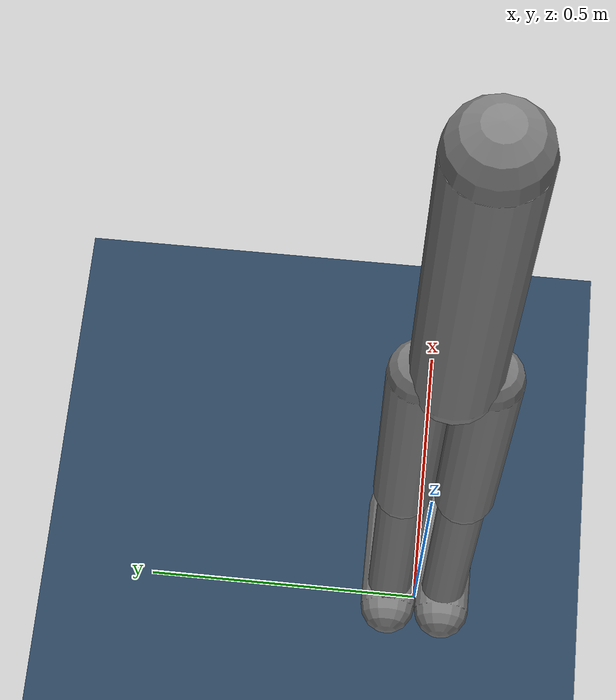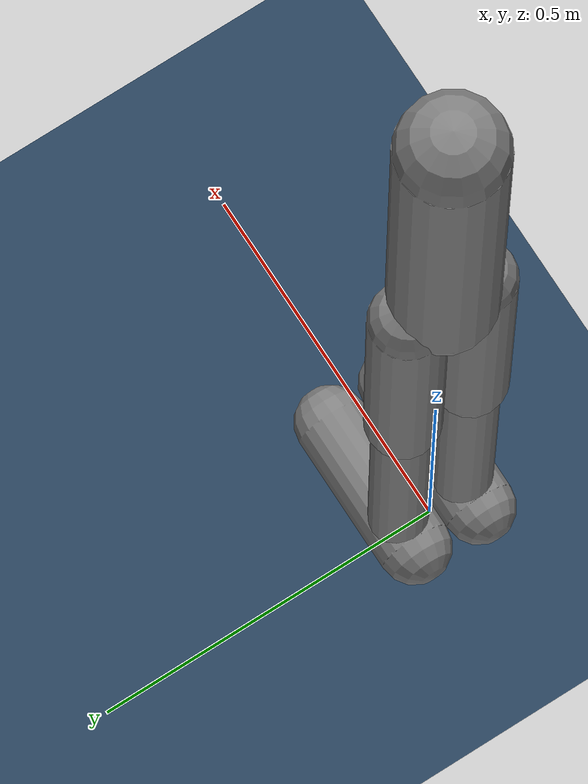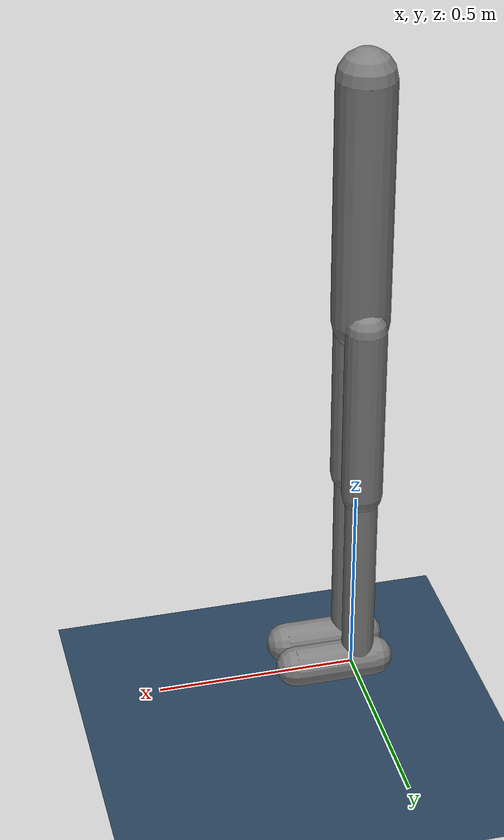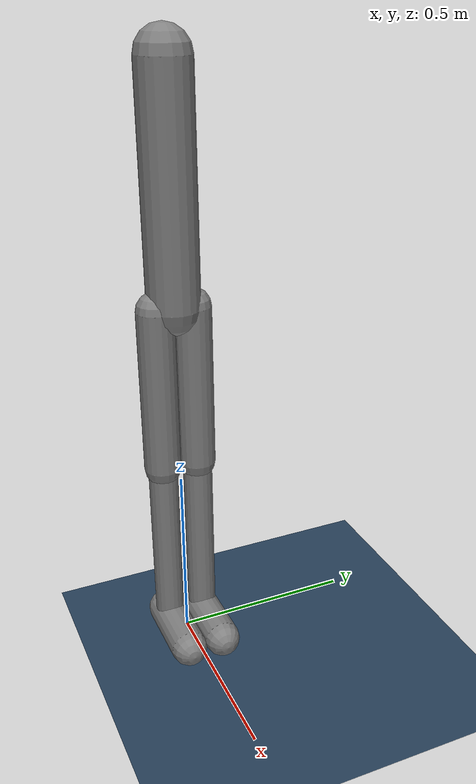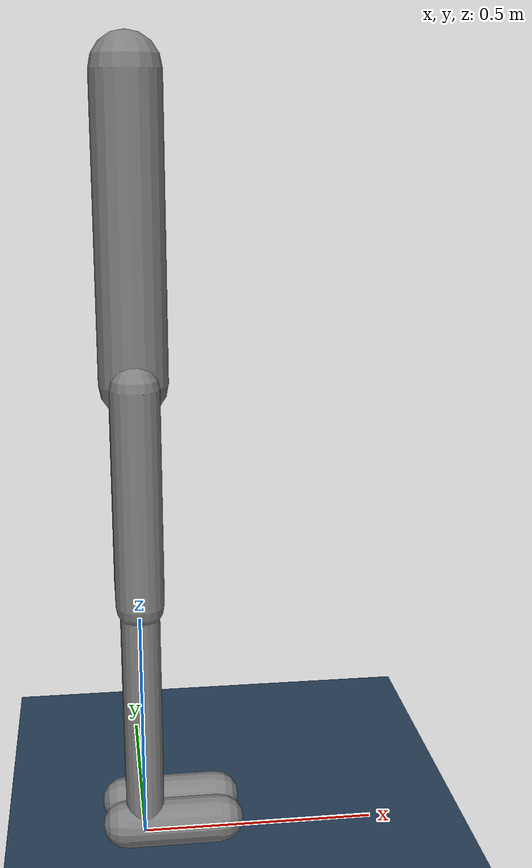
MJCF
<mujoco model="walker_scene">
  <!-- Model that includes the walker along with scene details. -->
  <include file="walker.xml"/>

  <statistic center="1 0 0.8" extent="3"/>

  <visual>
    <headlight diffuse="0.6 0.6 0.6" ambient="0.3 0.3 0.3" specular="0 0 0"/>
    <rgba haze="0.15 0.25 0.35 1"/>
    <global azimuth="70" elevation="-10"/>
  </visual>

  <asset>
    <texture type="skybox" builtin="gradient" rgb1="0.3 0.5 0.7" rgb2="0 0 0" width="512" height="3072"/>
    <texture type="2d" name="groundplane" builtin="checker" mark="edge" rgb1="0.2 0.3 0.4" rgb2="0.1 0.2 0.3"
      markrgb="0.8 0.8 0.8" width="300" height="300"/>
    <material name="groundplane" texture="groundplane" texuniform="true" texrepeat="5 5" reflectance="0.2"/>
  </asset>

  <worldbody>
    <camera name="camera" pos="0.0 3.0 1.5" xyaxes="-1.0 0.0 0.0 0.0 0.0 1.0" mode="fixed"/>
    <light pos="0 0 3" dir="0 0 -1" directional="false"/>
    <geom name="floor" size="0 0 .125" type="plane" material="groundplane" conaffinity="1"/>
  </worldbody>

</mujoco>

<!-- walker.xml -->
<mujoco model="walker">
  <!-- Adopted from the MJPC walker task
   https://github.com/google-deepmind/mujoco_mpc/tree/main/mjpc/tasks/walker``
   -->
  <option timestep="0.01" iterations="1" ls_iterations="6">
    <flag eulerdamp="disable"/>
  </option>

  <custom>
    <numeric data="5" name="max_contact_points"/>
    <numeric data="5" name="max_geom_pairs"/>
  </custom>

  <default>
    <joint damping=".1" armature="0.01" limited="true" />
    <geom contype="1" conaffinity="0" friction=".5" solref="0.02 1.0" solimp="0.0 0.95 0.01"/>
    <motor ctrlrange="-1 1" ctrllimited="true"/>
    <site size="0.01"/>
    <default class="walker">
      <geom type="capsule"/>
      <joint axis="0 -1 0"/>
    </default>
  </default>

  <worldbody>
    <body name="torso" pos="0 0 1.3" childclass="walker">
      <light name="light" pos="0 0 2" mode="trackcom"/>
      <camera name="floating"  pos="0 -2 0" xyaxes="1 0 0 0 0 1" mode="trackcom" fovy="90"/>
      <joint name="rootz" axis="0 0 1" type="slide" limited="false" armature="0" damping="0"/>
      <joint name="rootx" axis="1 0 0" type="slide" limited="false" armature="0" damping="0"/>
      <joint name="rooty" axis="0 1 0" type="hinge" limited="false" armature="0" damping="0"/>
      <geom name="torso" size="0.07 0.3"/>
      <site name="torso_site" pos="0 0 0" size="0.01"/>
      <body name="right_thigh" pos="0 -.05 -0.3">
        <joint name="right_hip" range="-20 100"/>
        <geom name="right_thigh" pos="0 0 -0.225" size="0.05 0.225"/>
        <body name="right_leg" pos="0 0 -0.7">
          <joint name="right_knee" pos="0 0 0.25" range="-150 0"/>
          <geom name="right_leg" size="0.04 0.25"/>
          <body name="right_foot" pos="0.06 0 -0.25">
            <joint name="right_ankle" pos="-0.06 0 0" range="-45 45"/>
            <geom name="right_foot" zaxis="1 0 0" size="0.05 0.1"/>
            <site name="right_foot_site" pos="0 0 0" size="0.01"/>
          </body>
        </body>
      </body>
      <body name="left_thigh" pos="0 .05 -0.3" >
        <joint name="left_hip" range="-20 100"/>
        <geom name="left_thigh" pos="0 0 -0.225" size="0.05 0.225"/>
        <body name="left_leg" pos="0 0 -0.7">
          <joint name="left_knee" pos="0 0 0.25" range="-150 0"/>
          <geom name="left_leg" size="0.04 0.25"/>
          <body name="left_foot" pos="0.06 0 -0.25">
            <joint name="left_ankle" pos="-0.06 0 0" range="-45 45"/>
            <geom name="left_foot" zaxis="1 0 0" size="0.05 0.1"/>
            <site name="left_foot_site" pos="0 0 0" size="0.01"/>
          </body>
        </body>
      </body>
    </body>
  </worldbody>

  <sensor>
    <framepos      name="torso_position" objtype="xbody" objname="torso"/>
    <subtreelinvel name="torso_subtreelinvel" body="torso"/>
    <framezaxis    name="torso_zaxis" objtype="xbody" objname="torso"/>
  </sensor>

  <actuator>
    <motor name="right_hip" joint="right_hip" gear="100"/>
    <motor name="right_knee" joint="right_knee" gear="50"/>
    <motor name="right_ankle" joint="right_ankle" gear="20"/>
    <motor name="left_hip" joint="left_hip" gear="100"/>
    <motor name="left_knee" joint="left_knee" gear="50"/>
    <motor name="left_ankle" joint="left_ankle" gear="20"/>
  </actuator>
</mujoco>
